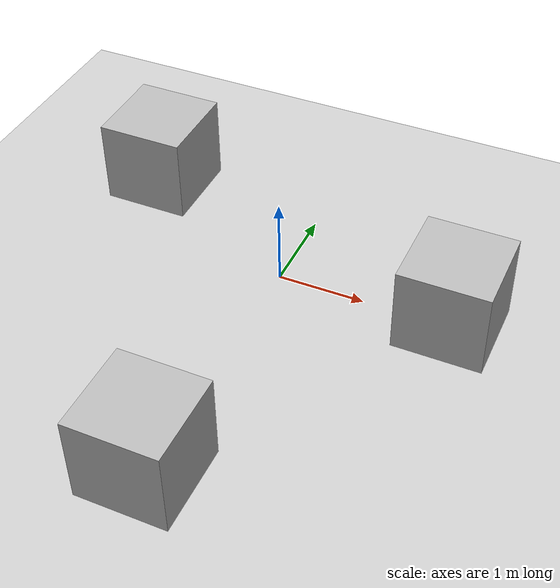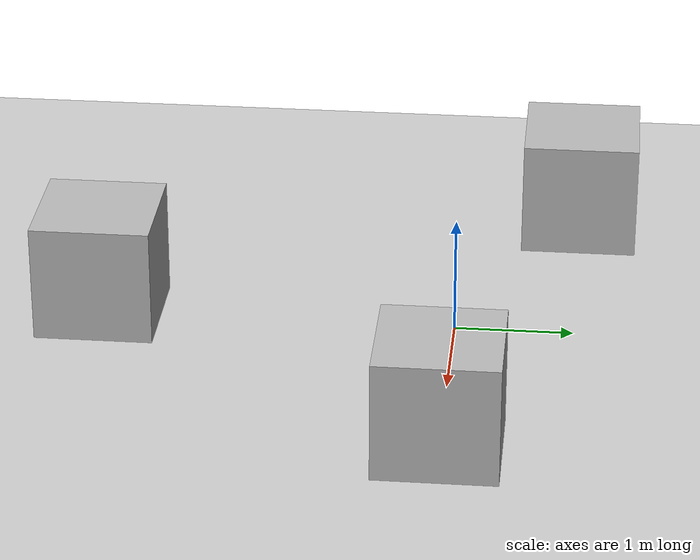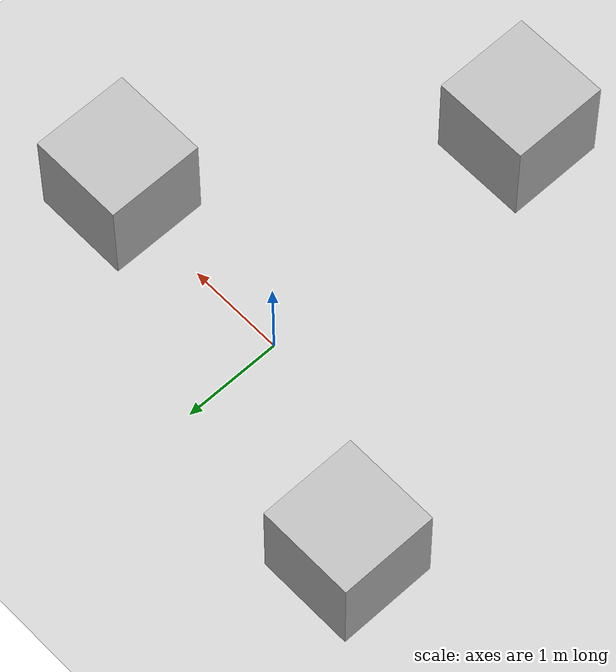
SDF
<?xml version="1.0" ?>
<sdf version="1.6">
    <world name="lidar_world">

        <!-- ── Physics ── -->
        <plugin filename="gz-sim-physics-system"
                name="gz::sim::systems::Physics">
        </plugin>

        <!-- ── User Commands ── -->
        <plugin filename="gz-sim-user-commands-system"
                name="gz::sim::systems::UserCommands">
        </plugin>

        <!-- ── Scene Broadcaster ── -->
        <plugin filename="gz-sim-scene-broadcaster-system"
                name="gz::sim::systems::SceneBroadcaster">
        </plugin>

        <!-- ── Sensors — gpu_lidar works here in Harmonic ── -->
        <plugin filename="gz-sim-sensors-system"
                name="gz::sim::systems::Sensors">
            <render_engine>ogre2</render_engine>
        </plugin>

        <!-- ── Basic Light ── -->
        <light type="directional" name="sun">
            <cast_shadows>true</cast_shadows>
            <pose>0 0 10 0 0 0</pose>
            <diffuse>0.8 0.8 0.8 1</diffuse>
            <specular>0.2 0.2 0.2 1</specular>
            <attenuation>
                <range>1000</range>
                <constant>0.9</constant>
                <linear>0.01</linear>
                <quadratic>0.001</quadratic>
            </attenuation>
            <direction>-0.5 0.1 -0.9</direction>
        </light>

        <!-- ── Ground Plane ── -->
        <model name="ground_plane">
            <static>true</static>
            <link name="link">
                <collision name="collision">
                    <geometry>
                        <plane>
                            <normal>0 0 1</normal>
                        </plane>
                    </geometry>
                </collision>
                <visual name="visual">
                    <geometry>
                        <plane>
                            <normal>0 0 1</normal>
                            <size>100 100</size>
                        </plane>
                    </geometry>
                    <material>
                        <ambient>0.8 0.8 0.8 1</ambient>
                        <diffuse>0.8 0.8 0.8 1</diffuse>
                        <specular>0.8 0.8 0.8 1</specular>
                    </material>
                </visual>
            </link>
        </model>

        <!-- ── Test Boxes for LiDAR ── -->
        <model name="box_1">
            <static>true</static>
            <pose>2 0 0.5 0 0 0</pose>
            <link name="link">
                <collision name="box_col">
                    <geometry><box><size>1 1 1</size></box></geometry>
                </collision>
                <visual name="box_vis">
                    <geometry><box><size>1 1 1</size></box></geometry>
                </visual>
            </link>
        </model>

        <model name="box_2">
            <static>true</static>
            <pose>-2 1 0.5 0 0 0</pose>
            <link name="link">
                <collision name="box_col">
                    <geometry><box><size>1 1 1</size></box></geometry>
                </collision>
                <visual name="box_vis">
                    <geometry><box><size>1 1 1</size></box></geometry>
                </visual>
            </link>
        </model>

        <model name="box_3">
            <static>true</static>
            <pose>0 -3 0.5 0 0 0</pose>
            <link name="link">
                <collision name="box_col">
                    <geometry><box><size>1 1 1</size></box></geometry>
                </collision>
                <visual name="box_vis">
                    <geometry><box><size>1 1 1</size></box></geometry>
                </visual>
            </link>
        </model>

    </world>
</sdf>
